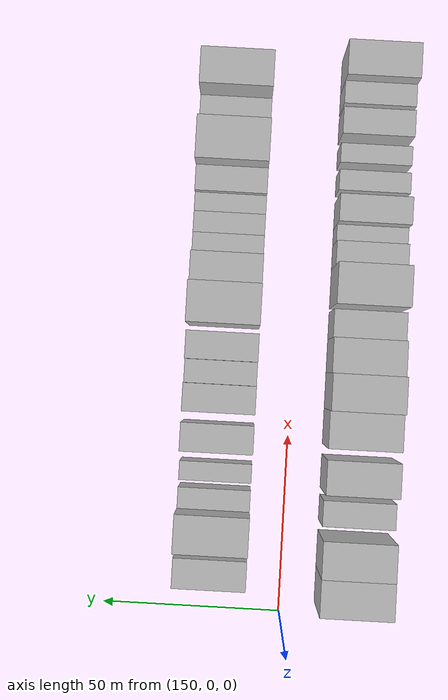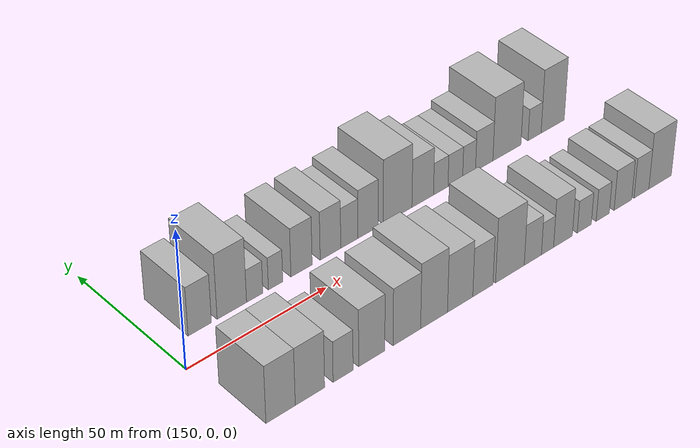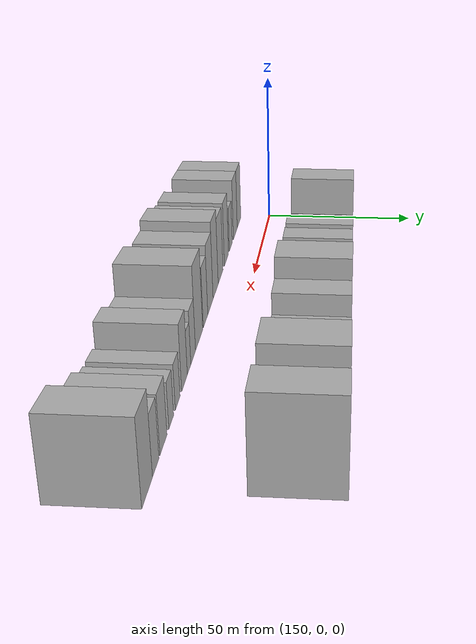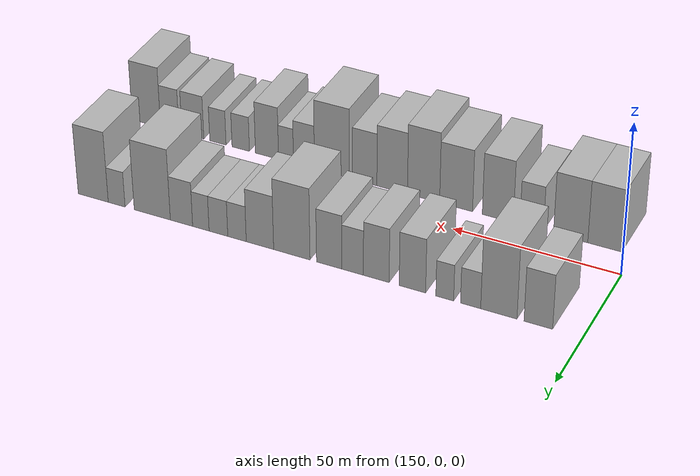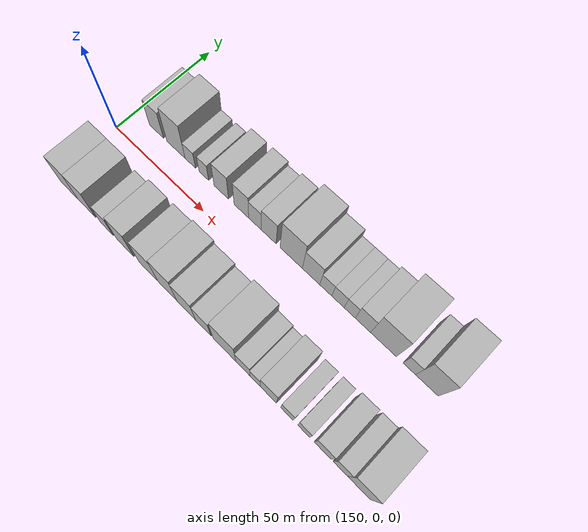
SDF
<sdf version="1.6">
 <world name="default">
  <model name="building_18">
   <static>1</static>
   <pose>162.5635 20.0000 0 0.000000 0.000000 1.570796</pose>
   <link name="link">
    <pose>0 0 9.00 0 0 0</pose>
    <collision name="collision"><geometry><box><size>20.0000 8.1580 18.0000</size></box></geometry></collision>
    <visual name="visual">
     <cast_shadows>0</cast_shadows>
     <geometry><box><size>20.0000 8.1580 18.0000</size></box></geometry>
     <material>
      <script>
       <uri>model://HANNAS_wall/materials/scripts</uri>
       <uri>model://HANNAS_wall/materials/textures</uri>
       <name>vrc/HANNAS_wall</name>
      </script>
     </material>
    </visual>
   </link>
  </model>
  <model name="building_19">
   <static>1</static>
   <pose>173.8788 20.0000 0 0.000000 0.000000 1.570796</pose>
   <link name="link">
    <pose>0 0 12.00 0 0 0</pose>
    <collision name="collision"><geometry><box><size>20.0000 10.4726 24.0000</size></box></geometry></collision>
    <visual name="visual">
     <cast_shadows>0</cast_shadows>
     <geometry><box><size>20.0000 10.4726 24.0000</size></box></geometry>
     <material>
      <script>
       <uri>model://HANNAS_wall/materials/scripts</uri>
       <uri>model://HANNAS_wall/materials/textures</uri>
       <name>vrc/HANNAS_wall</name>
      </script>
     </material>
    </visual>
   </link>
  </model>
  <model name="building_20">
   <static>1</static>
   <pose>182.0511 20.0000 0 0.000000 0.000000 1.570796</pose>
   <link name="link">
    <pose>0 0 6.00 0 0 0</pose>
    <collision name="collision"><geometry><box><size>20.0000 5.8721 12.0000</size></box></geometry></collision>
    <visual name="visual">
     <cast_shadows>0</cast_shadows>
     <geometry><box><size>20.0000 5.8721 12.0000</size></box></geometry>
     <material>
      <script>
       <uri>model://HANNAS_wall/materials/scripts</uri>
       <uri>model://HANNAS_wall/materials/textures</uri>
       <name>vrc/HANNAS_wall</name>
      </script>
     </material>
    </visual>
   </link>
  </model>
  <model name="building_21">
   <static>1</static>
   <pose>189.6062 20.0000 0 0.000000 0.000000 1.570796</pose>
   <link name="link">
    <pose>0 0 6.00 0 0 0</pose>
    <collision name="collision"><geometry><box><size>20.0000 5.2382 12.0000</size></box></geometry></collision>
    <visual name="visual">
     <cast_shadows>0</cast_shadows>
     <geometry><box><size>20.0000 5.2382 12.0000</size></box></geometry>
     <material>
      <script>
       <uri>model://HANNAS_wall/materials/scripts</uri>
       <uri>model://HANNAS_wall/materials/textures</uri>
       <name>vrc/HANNAS_wall</name>
      </script>
     </material>
    </visual>
   </link>
  </model>
  <model name="building_22">
   <static>1</static>
   <pose>199.1457 20.0000 0 0.000000 0.000000 1.570796</pose>
   <link name="link">
    <pose>0 0 9.00 0 0 0</pose>
    <collision name="collision"><geometry><box><size>20.0000 7.8409 18.0000</size></box></geometry></collision>
    <visual name="visual">
     <cast_shadows>0</cast_shadows>
     <geometry><box><size>20.0000 7.8409 18.0000</size></box></geometry>
     <material>
      <script>
       <uri>model://HANNAS_wall/materials/scripts</uri>
       <uri>model://HANNAS_wall/materials/textures</uri>
       <name>vrc/HANNAS_wall</name>
      </script>
     </material>
    </visual>
   </link>
  </model>
  <model name="building_23">
   <static>1</static>
   <pose>209.9331 20.0000 0 0.000000 0.000000 1.570796</pose>
   <link name="link">
    <pose>0 0 9.00 0 0 0</pose>
    <collision name="collision"><geometry><box><size>20.0000 7.7338 18.0000</size></box></geometry></collision>
    <visual name="visual">
     <cast_shadows>0</cast_shadows>
     <geometry><box><size>20.0000 7.7338 18.0000</size></box></geometry>
     <material>
      <script>
       <uri>model://HANNAS_wall/materials/scripts</uri>
       <uri>model://HANNAS_wall/materials/textures</uri>
       <name>vrc/HANNAS_wall</name>
      </script>
     </material>
    </visual>
   </link>
  </model>
  <model name="building_24">
   <static>1</static>
   <pose>217.0716 20.0000 0 0.000000 0.000000 1.570796</pose>
   <link name="link">
    <pose>0 0 7.50 0 0 0</pose>
    <collision name="collision"><geometry><box><size>20.0000 6.5432 15.0000</size></box></geometry></collision>
    <visual name="visual">
     <cast_shadows>0</cast_shadows>
     <geometry><box><size>20.0000 6.5432 15.0000</size></box></geometry>
     <material>
      <script>
       <uri>model://HANNAS_wall/materials/scripts</uri>
       <uri>model://HANNAS_wall/materials/textures</uri>
       <name>vrc/HANNAS_wall</name>
      </script>
     </material>
    </visual>
   </link>
  </model>
  <model name="building_25">
   <static>1</static>
   <pose>224.2039 20.0000 0 0.000000 0.000000 1.570796</pose>
   <link name="link">
    <pose>0 0 9.00 0 0 0</pose>
    <collision name="collision"><geometry><box><size>20.0000 7.7216 18.0000</size></box></geometry></collision>
    <visual name="visual">
     <cast_shadows>0</cast_shadows>
     <geometry><box><size>20.0000 7.7216 18.0000</size></box></geometry>
     <material>
      <script>
       <uri>model://HANNAS_wall/materials/scripts</uri>
       <uri>model://HANNAS_wall/materials/textures</uri>
       <name>vrc/HANNAS_wall</name>
      </script>
     </material>
    </visual>
   </link>
  </model>
  <model name="building_26">
   <static>1</static>
   <pose>235.6873 20.0000 0 0.000000 0.000000 1.570796</pose>
   <link name="link">
    <pose>0 0 12.00 0 0 0</pose>
    <collision name="collision"><geometry><box><size>20.0000 11.2451 24.0000</size></box></geometry></collision>
    <visual name="visual">
     <cast_shadows>0</cast_shadows>
     <geometry><box><size>20.0000 11.2451 24.0000</size></box></geometry>
     <material>
      <script>
       <uri>model://HANNAS_wall/materials/scripts</uri>
       <uri>model://HANNAS_wall/materials/textures</uri>
       <name>vrc/HANNAS_wall</name>
      </script>
     </material>
    </visual>
   </link>
  </model>
  <model name="building_27">
   <static>1</static>
   <pose>245.5917 20.0000 0 0.000000 0.000000 1.570796</pose>
   <link name="link">
    <pose>0 0 9.00 0 0 0</pose>
    <collision name="collision"><geometry><box><size>20.0000 8.5637 18.0000</size></box></geometry></collision>
    <visual name="visual">
     <cast_shadows>0</cast_shadows>
     <geometry><box><size>20.0000 8.5637 18.0000</size></box></geometry>
     <material>
      <script>
       <uri>model://HANNAS_wall/materials/scripts</uri>
       <uri>model://HANNAS_wall/materials/textures</uri>
       <name>vrc/HANNAS_wall</name>
      </script>
     </material>
    </visual>
   </link>
  </model>
  <model name="building_28">
   <static>1</static>
   <pose>252.7836 20.0000 0 0.000000 0.000000 1.570796</pose>
   <link name="link">
    <pose>0 0 6.00 0 0 0</pose>
    <collision name="collision"><geometry><box><size>20.0000 5.8200 12.0000</size></box></geometry></collision>
    <visual name="visual">
     <cast_shadows>0</cast_shadows>
     <geometry><box><size>20.0000 5.8200 12.0000</size></box></geometry>
     <material>
      <script>
       <uri>model://HANNAS_wall/materials/scripts</uri>
       <uri>model://HANNAS_wall/materials/textures</uri>
       <name>vrc/HANNAS_wall</name>
      </script>
     </material>
    </visual>
   </link>
  </model>
  <model name="building_29">
   <static>1</static>
   <pose>258.6537 20.0000 0 0.000000 0.000000 1.570796</pose>
   <link name="link">
    <pose>0 0 6.00 0 0 0</pose>
    <collision name="collision"><geometry><box><size>20.0000 5.9202 12.0000</size></box></geometry></collision>
    <visual name="visual">
     <cast_shadows>0</cast_shadows>
     <geometry><box><size>20.0000 5.9202 12.0000</size></box></geometry>
     <material>
      <script>
       <uri>model://HANNAS_wall/materials/scripts</uri>
       <uri>model://HANNAS_wall/materials/textures</uri>
       <name>vrc/HANNAS_wall</name>
      </script>
     </material>
    </visual>
   </link>
  </model>
  <model name="building_30">
   <static>1</static>
   <pose>264.2388 20.0000 0 0.000000 0.000000 1.570796</pose>
   <link name="link">
    <pose>0 0 6.00 0 0 0</pose>
    <collision name="collision"><geometry><box><size>20.0000 5.2501 12.0000</size></box></geometry></collision>
    <visual name="visual">
     <cast_shadows>0</cast_shadows>
     <geometry><box><size>20.0000 5.2501 12.0000</size></box></geometry>
     <material>
      <script>
       <uri>model://HANNAS_wall/materials/scripts</uri>
       <uri>model://HANNAS_wall/materials/textures</uri>
       <name>vrc/HANNAS_wall</name>
      </script>
     </material>
    </visual>
   </link>
  </model>
  <model name="building_31">
   <static>1</static>
   <pose>270.4426 20.0000 0 0.000000 0.000000 1.570796</pose>
   <link name="link">
    <pose>0 0 7.50 0 0 0</pose>
    <collision name="collision"><geometry><box><size>20.0000 7.1574 15.0000</size></box></geometry></collision>
    <visual name="visual">
     <cast_shadows>0</cast_shadows>
     <geometry><box><size>20.0000 7.1574 15.0000</size></box></geometry>
     <material>
      <script>
       <uri>model://HANNAS_wall/materials/scripts</uri>
       <uri>model://HANNAS_wall/materials/textures</uri>
       <name>vrc/HANNAS_wall</name>
      </script>
     </material>
    </visual>
   </link>
  </model>
  <model name="building_32">
   <static>1</static>
   <pose>279.8806 20.0000 0 0.000000 0.000000 1.570796</pose>
   <link name="link">
    <pose>0 0 12.00 0 0 0</pose>
    <collision name="collision"><geometry><box><size>20.0000 11.7185 24.0000</size></box></geometry></collision>
    <visual name="visual">
     <cast_shadows>0</cast_shadows>
     <geometry><box><size>20.0000 11.7185 24.0000</size></box></geometry>
     <material>
      <script>
       <uri>model://HANNAS_wall/materials/scripts</uri>
       <uri>model://HANNAS_wall/materials/textures</uri>
       <name>vrc/HANNAS_wall</name>
      </script>
     </material>
    </visual>
   </link>
  </model>
  <model name="building_33">
   <static>1</static>
   <pose>291.5039 20.0000 0 0.000000 0.000000 1.570796</pose>
   <link name="link">
    <pose>0 0 6.00 0 0 0</pose>
    <collision name="collision"><geometry><box><size>20.0000 5.5281 12.0000</size></box></geometry></collision>
    <visual name="visual">
     <cast_shadows>0</cast_shadows>
     <geometry><box><size>20.0000 5.5281 12.0000</size></box></geometry>
     <material>
      <script>
       <uri>model://HANNAS_wall/materials/scripts</uri>
       <uri>model://HANNAS_wall/materials/textures</uri>
       <name>vrc/HANNAS_wall</name>
      </script>
     </material>
    </visual>
   </link>
  </model>
  <model name="building_34">
   <static>1</static>
   <pose>299.2291 20.0000 0 0.000000 0.000000 1.570796</pose>
   <link name="link">
    <pose>0 0 12.00 0 0 0</pose>
    <collision name="collision"><geometry><box><size>20.0000 9.9224 24.0000</size></box></geometry></collision>
    <visual name="visual">
     <cast_shadows>0</cast_shadows>
     <geometry><box><size>20.0000 9.9224 24.0000</size></box></geometry>
     <material>
      <script>
       <uri>model://HANNAS_wall/materials/scripts</uri>
       <uri>model://HANNAS_wall/materials/textures</uri>
       <name>vrc/HANNAS_wall</name>
      </script>
     </material>
    </visual>
   </link>
  </model>
  <model name="building_50">
   <static>1</static>
   <pose>158.4925 -20.0000 0 0.000000 0.000000 1.570796</pose>
   <link name="link">
    <pose>0 0 10.50 0 0 0</pose>
    <collision name="collision"><geometry><box><size>20.0000 10.0790 21.0000</size></box></geometry></collision>
    <visual name="visual">
     <cast_shadows>0</cast_shadows>
     <geometry><box><size>20.0000 10.0790 21.0000</size></box></geometry>
     <material>
      <script>
       <uri>model://HANNAS_wall/materials/scripts</uri>
       <uri>model://HANNAS_wall/materials/textures</uri>
       <name>vrc/HANNAS_wall</name>
      </script>
     </material>
    </visual>
   </link>
  </model>
  <model name="building_51">
   <static>1</static>
   <pose>168.6437 -20.0000 0 0.000000 0.000000 1.570796</pose>
   <link name="link">
    <pose>0 0 10.50 0 0 0</pose>
    <collision name="collision"><geometry><box><size>20.0000 10.2234 21.0000</size></box></geometry></collision>
    <visual name="visual">
     <cast_shadows>0</cast_shadows>
     <geometry><box><size>20.0000 10.2234 21.0000</size></box></geometry>
     <material>
      <script>
       <uri>model://HANNAS_wall/materials/scripts</uri>
       <uri>model://HANNAS_wall/materials/textures</uri>
       <name>vrc/HANNAS_wall</name>
      </script>
     </material>
    </visual>
   </link>
  </model>
  <model name="building_52">
   <static>1</static>
   <pose>180.3109 -20.0000 0 0.000000 0.000000 1.570796</pose>
   <link name="link">
    <pose>0 0 7.50 0 0 0</pose>
    <collision name="collision"><geometry><box><size>20.0000 7.1110 15.0000</size></box></geometry></collision>
    <visual name="visual">
     <cast_shadows>0</cast_shadows>
     <geometry><box><size>20.0000 7.1110 15.0000</size></box></geometry>
     <material>
      <script>
       <uri>model://HANNAS_wall/materials/scripts</uri>
       <uri>model://HANNAS_wall/materials/textures</uri>
       <name>vrc/HANNAS_wall</name>
      </script>
     </material>
    </visual>
   </link>
  </model>
  <model name="building_53">
   <static>1</static>
   <pose>190.5988 -20.0000 0 0.000000 0.000000 1.570796</pose>
   <link name="link">
    <pose>0 0 10.50 0 0 0</pose>
    <collision name="collision"><geometry><box><size>20.0000 9.4647 21.0000</size></box></geometry></collision>
    <visual name="visual">
     <cast_shadows>0</cast_shadows>
     <geometry><box><size>20.0000 9.4647 21.0000</size></box></geometry>
     <material>
      <script>
       <uri>model://HANNAS_wall/materials/scripts</uri>
       <uri>model://HANNAS_wall/materials/textures</uri>
       <name>vrc/HANNAS_wall</name>
      </script>
     </material>
    </visual>
   </link>
  </model>
  <model name="building_54">
   <static>1</static>
   <pose>203.4242 -20.0000 0 0.000000 0.000000 1.570796</pose>
   <link name="link">
    <pose>0 0 10.50 0 0 0</pose>
    <collision name="collision"><geometry><box><size>20.0000 10.1860 21.0000</size></box></geometry></collision>
    <visual name="visual">
     <cast_shadows>0</cast_shadows>
     <geometry><box><size>20.0000 10.1860 21.0000</size></box></geometry>
     <material>
      <script>
       <uri>model://HANNAS_wall/materials/scripts</uri>
       <uri>model://HANNAS_wall/materials/textures</uri>
       <name>vrc/HANNAS_wall</name>
      </script>
     </material>
    </visual>
   </link>
  </model>
  <model name="building_55">
   <static>1</static>
   <pose>213.5533 -20.0000 0 0.000000 0.000000 1.570796</pose>
   <link name="link">
    <pose>0 0 12.00 0 0 0</pose>
    <collision name="collision"><geometry><box><size>20.0000 10.0723 24.0000</size></box></geometry></collision>
    <visual name="visual">
     <cast_shadows>0</cast_shadows>
     <geometry><box><size>20.0000 10.0723 24.0000</size></box></geometry>
     <material>
      <script>
       <uri>model://HANNAS_wall/materials/scripts</uri>
       <uri>model://HANNAS_wall/materials/textures</uri>
       <name>vrc/HANNAS_wall</name>
      </script>
     </material>
    </visual>
   </link>
  </model>
  <model name="building_56">
   <static>1</static>
   <pose>223.4179 -20.0000 0 0.000000 0.000000 1.570796</pose>
   <link name="link">
    <pose>0 0 10.50 0 0 0</pose>
    <collision name="collision"><geometry><box><size>20.0000 9.6569 21.0000</size></box></geometry></collision>
    <visual name="visual">
     <cast_shadows>0</cast_shadows>
     <geometry><box><size>20.0000 9.6569 21.0000</size></box></geometry>
     <material>
      <script>
       <uri>model://HANNAS_wall/materials/scripts</uri>
       <uri>model://HANNAS_wall/materials/textures</uri>
       <name>vrc/HANNAS_wall</name>
      </script>
     </material>
    </visual>
   </link>
  </model>
  <model name="building_57">
   <static>1</static>
   <pose>232.1430 -20.0000 0 0.000000 0.000000 1.570796</pose>
   <link name="link">
    <pose>0 0 9.00 0 0 0</pose>
    <collision name="collision"><geometry><box><size>20.0000 7.7932 18.0000</size></box></geometry></collision>
    <visual name="visual">
     <cast_shadows>0</cast_shadows>
     <geometry><box><size>20.0000 7.7932 18.0000</size></box></geometry>
     <material>
      <script>
       <uri>model://HANNAS_wall/materials/scripts</uri>
       <uri>model://HANNAS_wall/materials/textures</uri>
       <name>vrc/HANNAS_wall</name>
      </script>
     </material>
    </visual>
   </link>
  </model>
  <model name="building_58">
   <static>1</static>
   <pose>242.6727 -20.0000 0 0.000000 0.000000 1.570796</pose>
   <link name="link">
    <pose>0 0 12.00 0 0 0</pose>
    <collision name="collision"><geometry><box><size>20.0000 11.2663 24.0000</size></box></geometry></collision>
    <visual name="visual">
     <cast_shadows>0</cast_shadows>
     <geometry><box><size>20.0000 11.2663 24.0000</size></box></geometry>
     <material>
      <script>
       <uri>model://HANNAS_wall/materials/scripts</uri>
       <uri>model://HANNAS_wall/materials/textures</uri>
       <name>vrc/HANNAS_wall</name>
      </script>
     </material>
    </visual>
   </link>
  </model>
  <model name="building_59">
   <static>1</static>
   <pose>251.7234 -20.0000 0 0.000000 0.000000 1.570796</pose>
   <link name="link">
    <pose>0 0 7.50 0 0 0</pose>
    <collision name="collision"><geometry><box><size>20.0000 6.8351 15.0000</size></box></geometry></collision>
    <visual name="visual">
     <cast_shadows>0</cast_shadows>
     <geometry><box><size>20.0000 6.8351 15.0000</size></box></geometry>
     <material>
      <script>
       <uri>model://HANNAS_wall/materials/scripts</uri>
       <uri>model://HANNAS_wall/materials/textures</uri>
       <name>vrc/HANNAS_wall</name>
      </script>
     </material>
    </visual>
   </link>
  </model>
  <model name="building_60">
   <static>1</static>
   <pose>257.5860 -20.0000 0 0.000000 0.000000 1.570796</pose>
   <link name="link">
    <pose>0 0 6.00 0 0 0</pose>
    <collision name="collision"><geometry><box><size>20.0000 4.8899 12.0000</size></box></geometry></collision>
    <visual name="visual">
     <cast_shadows>0</cast_shadows>
     <geometry><box><size>20.0000 4.8899 12.0000</size></box></geometry>
     <material>
      <script>
       <uri>model://HANNAS_wall/materials/scripts</uri>
       <uri>model://HANNAS_wall/materials/textures</uri>
       <name>vrc/HANNAS_wall</name>
      </script>
     </material>
    </visual>
   </link>
  </model>
  <model name="building_61">
   <static>1</static>
   <pose>263.8447 -20.0000 0 0.000000 0.000000 1.570796</pose>
   <link name="link">
    <pose>0 0 9.00 0 0 0</pose>
    <collision name="collision"><geometry><box><size>20.0000 7.6275 18.0000</size></box></geometry></collision>
    <visual name="visual">
     <cast_shadows>0</cast_shadows>
     <geometry><box><size>20.0000 7.6275 18.0000</size></box></geometry>
     <material>
      <script>
       <uri>model://HANNAS_wall/materials/scripts</uri>
       <uri>model://HANNAS_wall/materials/textures</uri>
       <name>vrc/HANNAS_wall</name>
      </script>
     </material>
    </visual>
   </link>
  </model>
  <model name="building_62">
   <static>1</static>
   <pose>272.5551 -20.0000 0 0.000000 0.000000 1.570796</pose>
   <link name="link">
    <pose>0 0 6.00 0 0 0</pose>
    <collision name="collision"><geometry><box><size>20.0000 5.7934 12.0000</size></box></geometry></collision>
    <visual name="visual">
     <cast_shadows>0</cast_shadows>
     <geometry><box><size>20.0000 5.7934 12.0000</size></box></geometry>
     <material>
      <script>
       <uri>model://HANNAS_wall/materials/scripts</uri>
       <uri>model://HANNAS_wall/materials/textures</uri>
       <name>vrc/HANNAS_wall</name>
      </script>
     </material>
    </visual>
   </link>
  </model>
  <model name="building_63">
   <static>1</static>
   <pose>280.1810 -20.0000 0 0.000000 0.000000 1.570796</pose>
   <link name="link">
    <pose>0 0 6.00 0 0 0</pose>
    <collision name="collision"><geometry><box><size>20.0000 5.4583 12.0000</size></box></geometry></collision>
    <visual name="visual">
     <cast_shadows>0</cast_shadows>
     <geometry><box><size>20.0000 5.4583 12.0000</size></box></geometry>
     <material>
      <script>
       <uri>model://HANNAS_wall/materials/scripts</uri>
       <uri>model://HANNAS_wall/materials/textures</uri>
       <name>vrc/HANNAS_wall</name>
      </script>
     </material>
    </visual>
   </link>
  </model>
  <model name="building_64">
   <static>1</static>
   <pose>288.6175 -20.0000 0 0.000000 0.000000 1.570796</pose>
   <link name="link">
    <pose>0 0 7.50 0 0 0</pose>
    <collision name="collision"><geometry><box><size>20.0000 7.4147 15.0000</size></box></geometry></collision>
    <visual name="visual">
     <cast_shadows>0</cast_shadows>
     <geometry><box><size>20.0000 7.4147 15.0000</size></box></geometry>
     <material>
      <script>
       <uri>model://HANNAS_wall/materials/scripts</uri>
       <uri>model://HANNAS_wall/materials/textures</uri>
       <name>vrc/HANNAS_wall</name>
      </script>
     </material>
    </visual>
   </link>
  </model>
  <model name="building_65">
   <static>1</static>
   <pose>296.4678 -20.0000 0 0.000000 0.000000 1.570796</pose>
   <link name="link">
    <pose>0 0 7.50 0 0 0</pose>
    <collision name="collision"><geometry><box><size>20.0000 6.2860 15.0000</size></box></geometry></collision>
    <visual name="visual">
     <cast_shadows>0</cast_shadows>
     <geometry><box><size>20.0000 6.2860 15.0000</size></box></geometry>
     <material>
      <script>
       <uri>model://HANNAS_wall/materials/scripts</uri>
       <uri>model://HANNAS_wall/materials/textures</uri>
       <name>vrc/HANNAS_wall</name>
      </script>
     </material>
    </visual>
   </link>
  </model>
  <model name="building_66">
   <static>1</static>
   <pose>304.4645 -20.0000 0 0.000000 0.000000 1.570796</pose>
   <link name="link">
    <pose>0 0 10.50 0 0 0</pose>
    <collision name="collision"><geometry><box><size>20.0000 9.7074 21.0000</size></box></geometry></collision>
    <visual name="visual">
     <cast_shadows>0</cast_shadows>
     <geometry><box><size>20.0000 9.7074 21.0000</size></box></geometry>
     <material>
      <script>
       <uri>model://HANNAS_wall/materials/scripts</uri>
       <uri>model://HANNAS_wall/materials/textures</uri>
       <name>vrc/HANNAS_wall</name>
      </script>
     </material>
    </visual>
   </link>
  </model>
 </world>
</sdf>
